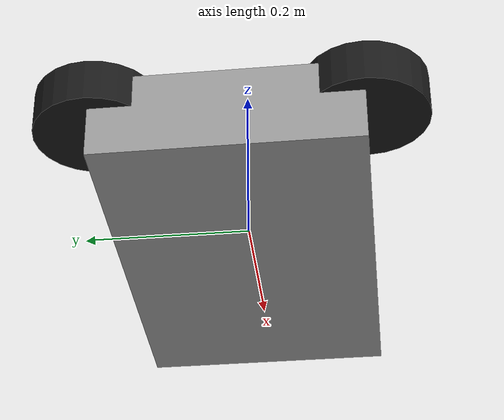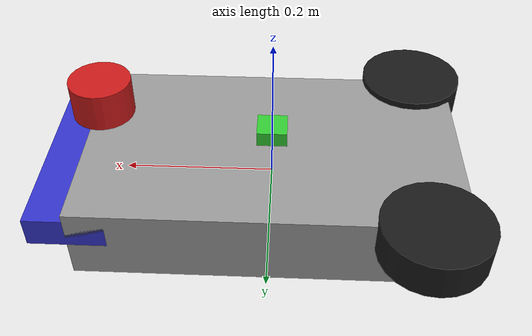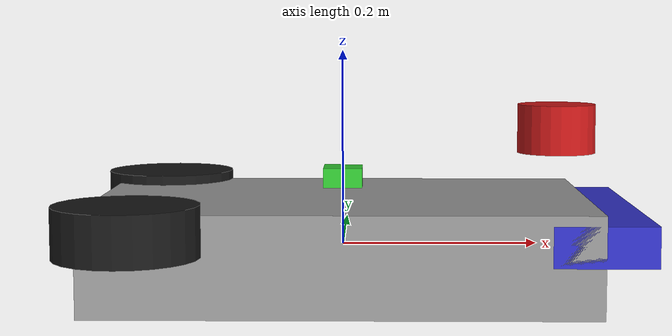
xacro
<?xml version="1.0"?>
<robot name="car" xmlns:xacro="http://ros.org/wiki/xacro">
  <!-- Base -->
  <link name="base_link">
    <visual>
      <geometry>
        <box size="0.5 0.3 0.1"/>
      </geometry>
      <material name="Gray">
        <color rgba="0.6 0.6 0.6 1"/>
      </material>
    </visual>
  </link>

  <!-- Left Wheel -->
  <link name="left_wheel">
    <visual>
      <geometry>
        <cylinder length="0.05" radius="0.07"/>
      </geometry>
      <material name="Black">
        <color rgba="0.1 0.1 0.1 1"/>
      </material>
    </visual>
    <origin xyz="0 0 0" rpy="0 0 0"/>
  </link>
  <joint name="left_wheel_joint" type="continuous">
    <parent link="base_link"/>
    <child link="left_wheel"/>
    <origin xyz="-0.2 0.15 0.035"/>
    <axis xyz="0 1 0"/>
  </joint>

  <!-- Right Wheel -->
  <link name="right_wheel">
    <visual>
      <geometry>
        <cylinder length="0.05" radius="0.07"/>
      </geometry>
      <material name="Black"/>
    </visual>
    <origin xyz="0 0 0" rpy="0 0 0"/>
  </link>
  <joint name="right_wheel_joint" type="continuous">
    <parent link="base_link"/>
    <child link="right_wheel"/>
    <origin xyz="-0.2 -0.15 0.035"/>
    <axis xyz="0 1 0"/>
  </joint>

  <!-- Steering (Front Axle) -->
  <link name="steering">
    <visual>
      <geometry>
        <box size="0.1 0.3 0.04"/>
      </geometry>
      <material name="Blue">
        <color rgba="0.2 0.2 0.8 1"/>
      </material>
    </visual>
  </link>
  <joint name="steering_joint" type="revolute">
    <parent link="base_link"/>
    <child link="steering"/>
    <origin xyz="0.25 0 0.02"/>
    <axis xyz="0 0 1"/>
    <limit lower="-0.5" upper="0.5" effort="1" velocity="1"/>
  </joint>

  <!-- Lidar -->
  <link name="laser">
    <visual>
      <geometry>
        <cylinder length="0.05" radius="0.04"/>
      </geometry>
      <material name="Red">
        <color rgba="0.8 0.1 0.1 1"/>
      </material>
    </visual>
  </link>
  <joint name="laser_joint" type="fixed">
    <parent link="base_link"/>
    <child link="laser"/>
    <origin xyz="0.22 0 0.12"/>
  </joint>

  <!-- IMU -->
  <link name="imu">
    <visual>
      <geometry>
        <box size="0.04 0.04 0.02"/>
      </geometry>
      <material name="Green">
        <color rgba="0.2 0.8 0.2 1"/>
      </material>
    </visual>
  </link>
  <joint name="imu_joint" type="fixed">
    <parent link="base_link"/>
    <child link="imu"/>
    <origin xyz="0 0 0.07"/>
  </joint>
</robot>
